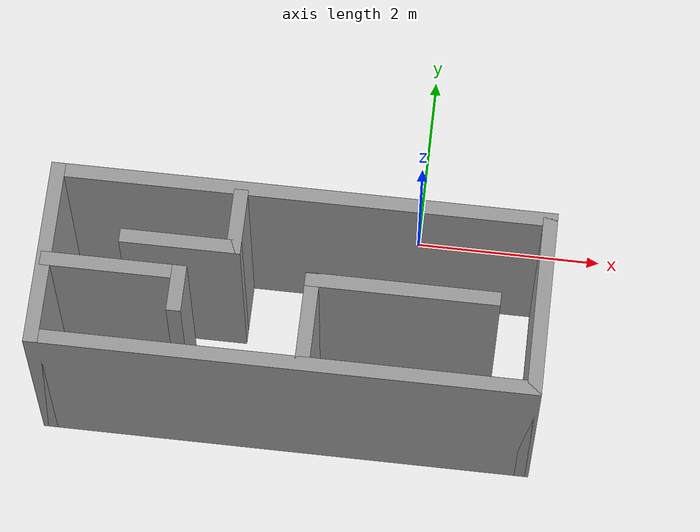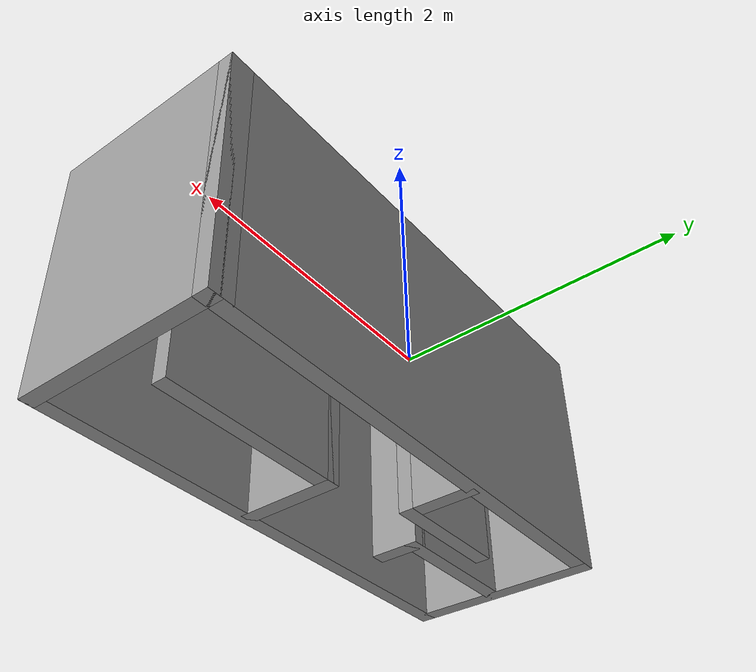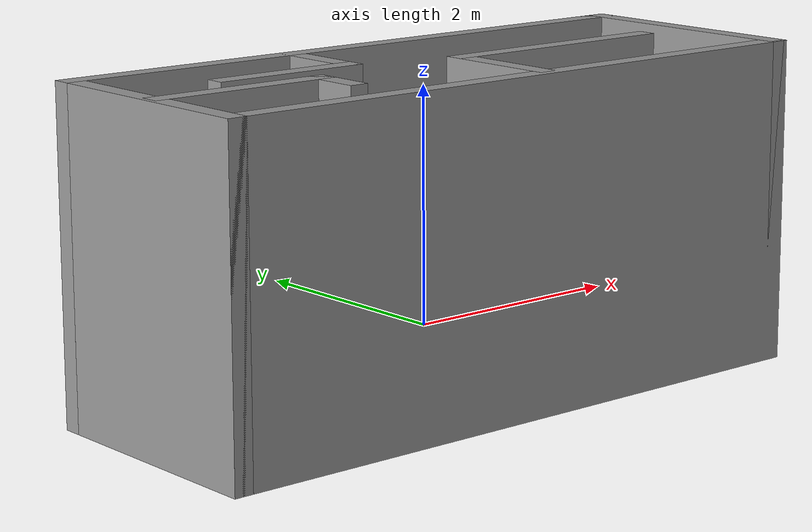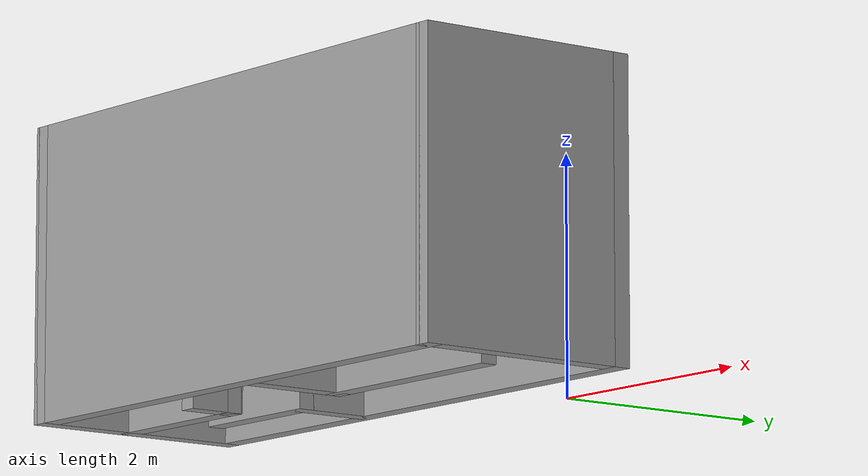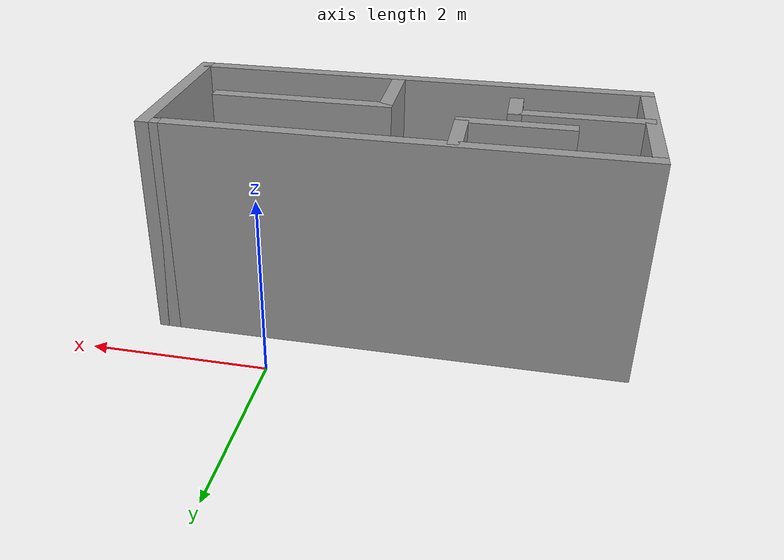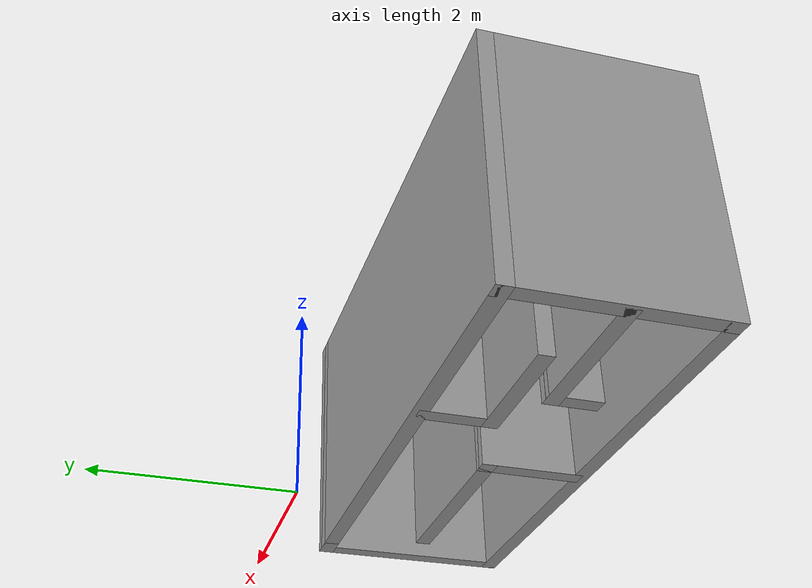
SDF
<?xml version='1.0'?>
<sdf version='1.7'>
  <model name='room'>
    <pose>-1.18 -1.2825 0 0 -0 0</pose>
    <link name='Wall_0'>
      <collision name='Wall_0_Collision'>
        <geometry>
          <box>
            <size>0.25 0.15 2.5</size>
          </box>
        </geometry>
        <pose>0 0 1.25 0 -0 0</pose>
      </collision>
      <visual name='Wall_0_Visual'>
        <pose>0 0 1.25 0 -0 0</pose>
        <geometry>
          <box>
            <size>0.25 0.15 2.5</size>
          </box>
        </geometry>
        <material>
          <script>
            <uri>file://media/materials/scripts/gazebo.material</uri>
            <name>Gazebo/Grey</name>
          </script>
          <ambient>1 1 1 1</ambient>
        </material>
        <meta>
          <layer>0</layer>
        </meta>
      </visual>
      <pose>2.5 0.6425 0 0 -0 0</pose>
    </link>
    <link name='Wall_1'>
      <collision name='Wall_1_Collision'>
        <geometry>
          <box>
            <size>5.25 0.15 2.5</size>
          </box>
        </geometry>
        <pose>0 0 1.25 0 -0 0</pose>
      </collision>
      <visual name='Wall_1_Visual'>
        <pose>0 0 1.25 0 -0 0</pose>
        <geometry>
          <box>
            <size>5.25 0.15 2.5</size>
          </box>
        </geometry>
        <material>
          <script>
            <uri>file://media/materials/scripts/gazebo.material</uri>
            <name>Gazebo/Grey</name>
          </script>
          <ambient>1 1 1 1</ambient>
        </material>
        <meta>
          <layer>0</layer>
        </meta>
      </visual>
      <pose>0 0.6425 0 0 -0 3.14159</pose>
    </link>
    <link name='Wall_10'>
      <collision name='Wall_10_Collision'>
        <geometry>
          <box>
            <size>0.5 0.15 2.5</size>
          </box>
        </geometry>
        <pose>0 0 1.25 0 -0 0</pose>
      </collision>
      <visual name='Wall_10_Visual'>
        <pose>0 0 1.25 0 -0 0</pose>
        <geometry>
          <box>
            <size>0.5 0.15 2.5</size>
          </box>
        </geometry>
        <material>
          <script>
            <uri>file://media/materials/scripts/gazebo.material</uri>
            <name>Gazebo/Grey</name>
          </script>
          <ambient>1 1 1 1</ambient>
        </material>
        <meta>
          <layer>0</layer>
        </meta>
      </visual>
      <pose>-1.16 -0.5325 0 0 -0 -1.5708</pose>
    </link>
    <link name='Wall_12'>
      <collision name='Wall_12_Collision'>
        <geometry>
          <box>
            <size>1 0.15 2.5</size>
          </box>
        </geometry>
        <pose>0 0 1.25 0 -0 0</pose>
      </collision>
      <visual name='Wall_12_Visual'>
        <pose>0 0 1.25 0 -0 0</pose>
        <geometry>
          <box>
            <size>1 0.15 2.5</size>
          </box>
        </geometry>
        <material>
          <script>
            <uri>file://media/materials/scripts/gazebo.material</uri>
            <name>Gazebo/Grey</name>
          </script>
          <ambient>1 1 1 1</ambient>
        </material>
        <meta>
          <layer>0</layer>
        </meta>
      </visual>
      <pose>0.2 -0.7125 0 0 -0 1.5708</pose>
    </link>
    <link name='Wall_13'>
      <collision name='Wall_13_Collision'>
        <geometry>
          <box>
            <size>2 0.15 2.5</size>
          </box>
        </geometry>
        <pose>0 0 1.25 0 -0 0</pose>
      </collision>
      <visual name='Wall_13_Visual'>
        <pose>0 0 1.25 0 -0 0</pose>
        <geometry>
          <box>
            <size>2 0.15 2.5</size>
          </box>
        </geometry>
        <material>
          <script>
            <uri>file://media/materials/scripts/gazebo.material</uri>
            <name>Gazebo/Grey</name>
          </script>
          <ambient>1 1 1 1</ambient>
        </material>
        <meta>
          <layer>0</layer>
        </meta>
      </visual>
      <pose>1.125 -0.2875 0 0 -0 0</pose>
    </link>
    <link name='Wall_2'>
      <collision name='Wall_2_Collision'>
        <geometry>
          <box>
            <size>2 0.15 2.5</size>
          </box>
        </geometry>
        <pose>0 0 1.25 0 -0 0</pose>
      </collision>
      <visual name='Wall_2_Visual'>
        <pose>0 0 1.25 0 -0 0</pose>
        <geometry>
          <box>
            <size>2 0.15 2.5</size>
          </box>
        </geometry>
        <material>
          <script>
            <uri>file://media/materials/scripts/gazebo.material</uri>
            <name>Gazebo/Grey</name>
          </script>
          <ambient>1 1 1 1</ambient>
        </material>
        <meta>
          <layer>0</layer>
        </meta>
      </visual>
      <pose>-2.55 -0.2825 0 0 -0 -1.5708</pose>
    </link>
    <link name='Wall_3'>
      <collision name='Wall_3_Collision'>
        <geometry>
          <box>
            <size>5.25 0.15 2.5</size>
          </box>
        </geometry>
        <pose>0 0 1.25 0 -0 0</pose>
      </collision>
      <visual name='Wall_3_Visual'>
        <pose>0 0 1.25 0 -0 0</pose>
        <geometry>
          <box>
            <size>5.25 0.15 2.5</size>
          </box>
        </geometry>
        <material>
          <script>
            <uri>file://media/materials/scripts/gazebo.material</uri>
            <name>Gazebo/Grey</name>
          </script>
          <ambient>1 1 1 1</ambient>
        </material>
        <meta>
          <layer>0</layer>
        </meta>
      </visual>
      <pose>0 -1.2075 0 0 -0 0</pose>
    </link>
    <link name='Wall_4'>
      <collision name='Wall_4_Collision'>
        <geometry>
          <box>
            <size>2 0.15 2.5</size>
          </box>
        </geometry>
        <pose>0 0 1.25 0 -0 0</pose>
      </collision>
      <visual name='Wall_4_Visual'>
        <pose>0 0 1.25 0 -0 0</pose>
        <geometry>
          <box>
            <size>2 0.15 2.5</size>
          </box>
        </geometry>
        <material>
          <script>
            <uri>file://media/materials/scripts/gazebo.material</uri>
            <name>Gazebo/Grey</name>
          </script>
          <ambient>1 1 1 1</ambient>
        </material>
        <meta>
          <layer>0</layer>
        </meta>
      </visual>
      <pose>2.55 -0.2825 0 0 -0 1.5708</pose>
    </link>
    <link name='Wall_6'>
      <collision name='Wall_6_Collision'>
        <geometry>
          <box>
            <size>0.75 0.15 2.5</size>
          </box>
        </geometry>
        <pose>0 0 1.25 0 -0 0</pose>
      </collision>
      <visual name='Wall_6_Visual'>
        <pose>0 0 1.25 0 -0 0</pose>
        <geometry>
          <box>
            <size>0.75 0.15 2.5</size>
          </box>
        </geometry>
        <material>
          <script>
            <uri>file://media/materials/scripts/gazebo.material</uri>
            <name>Gazebo/Grey</name>
          </script>
          <ambient>1 1 1 1</ambient>
        </material>
        <meta>
          <layer>0</layer>
        </meta>
      </visual>
      <pose>-0.64 0.2825 0 0 -0 -1.5708</pose>
    </link>
    <link name='Wall_7'>
      <collision name='Wall_7_Collision'>
        <geometry>
          <box>
            <size>1.25 0.15 2.5</size>
          </box>
        </geometry>
        <pose>0 0 1.25 0 -0 0</pose>
      </collision>
      <visual name='Wall_7_Visual'>
        <pose>0 0 1.25 0 -0 0</pose>
        <geometry>
          <box>
            <size>1.25 0.15 2.5</size>
          </box>
        </geometry>
        <material>
          <script>
            <uri>file://media/materials/scripts/gazebo.material</uri>
            <name>Gazebo/Grey</name>
          </script>
          <ambient>1 1 1 1</ambient>
        </material>
        <meta>
          <layer>0</layer>
        </meta>
      </visual>
      <pose>-1.19 -0.0175 0 0 -0 3.14159</pose>
    </link>
    <link name='Wall_9'>
      <collision name='Wall_9_Collision'>
        <geometry>
          <box>
            <size>1.5 0.15 2.5</size>
          </box>
        </geometry>
        <pose>0 0 1.25 0 -0 0</pose>
      </collision>
      <visual name='Wall_9_Visual'>
        <pose>0 0 1.25 0 -0 0</pose>
        <geometry>
          <box>
            <size>1.5 0.15 2.5</size>
          </box>
        </geometry>
        <material>
          <script>
            <uri>file://media/materials/scripts/gazebo.material</uri>
            <name>Gazebo/Grey</name>
          </script>
          <ambient>1 1 1 1</ambient>
        </material>
        <meta>
          <layer>0</layer>
        </meta>
      </visual>
      <pose>-1.835 -0.3575 0 0 -0 0</pose>
    </link>
    <static>1</static>
  </model>
</sdf>
